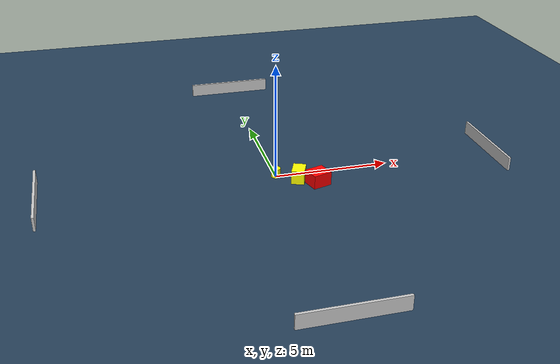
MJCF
<?xml version="1.0" ?>
<mujoco model="generated_environment">
  <option timestep="0.01" integrator="RK4" cone="elliptic"/>
  <default>
    <geom density="1"/>
  </default>
  <asset>
    <texture builtin="gradient" height="3072" name="skybox" rgb1="0.3 0.5 0.7" rgb2="0 0 0" type="skybox" width="512"/>
    <texture builtin="checker" height="300" name="groundplane" rgb1="0.2 0.3 0.4" rgb2="0.1 0.2 0.3" type="2d" width="300"/>
    <material name="groundplane" reflectance="0.2" texrepeat="5 5" texture="groundplane"/>
  </asset>
  <worldbody>
    <light dir="0 0 -1" directional="true" pos="0 0 1.5"/>
    <geom condim="3" friction="0.5 0.005 0.001" material="groundplane" name="floor" pos="0 0 0" size="0 0 0.05" type="plane"/>
    <body name="walls">
      <geom name="wall_1" condim="4" pos="-10.0 0.0 0.3" rgba="0.800000011920929 0.800000011920929 0.800000011920929 1.0" size="0.05 2.0 0.3" type="box"/>
      <geom name="wall_2" condim="4" pos="10.0 0.0 0.3" rgba="0.800000011920929 0.800000011920929 0.800000011920929 1.0" size="0.05 2.0 0.3" type="box"/>
      <geom name="wall_3" condim="4" pos="0.0 -10.0 0.3" rgba="0.800000011920929 0.800000011920929 0.800000011920929 1.0" size="2.0 0.05 0.3" type="box"/>
      <geom name="wall_4" condim="4" pos="0.0 10.0 0.3" rgba="0.800000011920929 0.800000011920929 0.800000011920929 1.0" size="2.0 0.05 0.3" type="box"/>
    </body>
    <body name="robot">
      <joint name="joint_x" type="slide" pos="0 0 0" axis="1 0 0"/>
      <joint name="joint_y" type="slide" pos="0 0 0" axis="0 1 0"/>
      <geom name="robot" type="cylinder" pos="0.0 0.0 0.2" size="0.2 0.2 0.0" mass="5.0" friction="1.0 0.005 0.0001" condim="4" rgba="1.0 1.0 0.0 1.0"/>
    </body>
    <body name="obstacle_1_movable">
      <geom name="obstacle_1_movable" condim="4" pos="0.8604594194303454 -0.5859801663294093 0.3" euler="0 0 337.28466381580836" friction="0.0 0.005 0.001" rgba="1.0 1.0 0.0 1.0" size="0.27422252721916685 0.3828722381954899 0.3" type="box" mass="0.1"/>
      <joint type="free"/>
    </body>
    <body name="obstacle_2_static">
      <geom name="obstacle_2_static" condim="4" pos="1.573693549883921 -1.0631015854364083 0.3" euler="0 0 106.84569967902891" friction="0.0 0.005 0.001" rgba="1.0 0.0 0.0 1.0" size="0.36798895397481285 0.4189635921723034 0.3" type="box"/>
    </body>
  </worldbody>
  <actuator>
    <motor name="actuator_x" joint="joint_x" gear="1" ctrlrange="-1 1"/>
    <motor name="actuator_y" joint="joint_y" gear="1" ctrlrange="-1 1"/>
  </actuator>
</mujoco>
